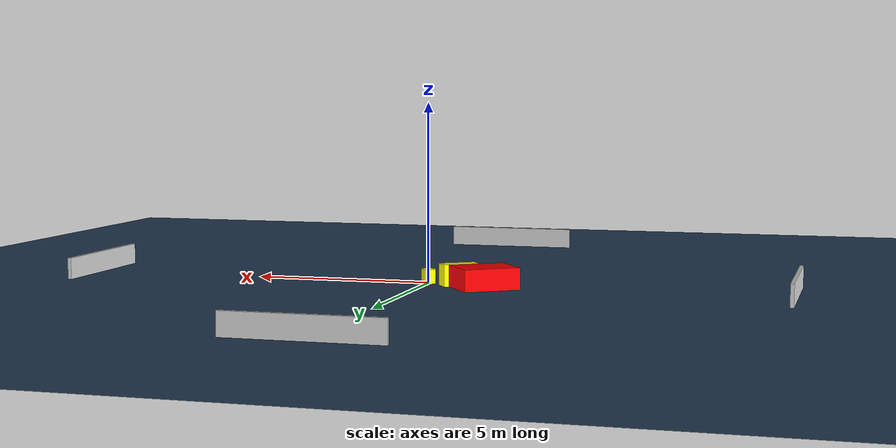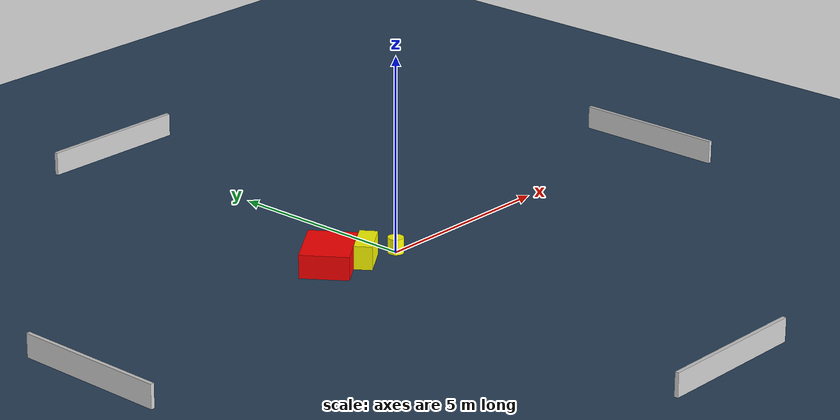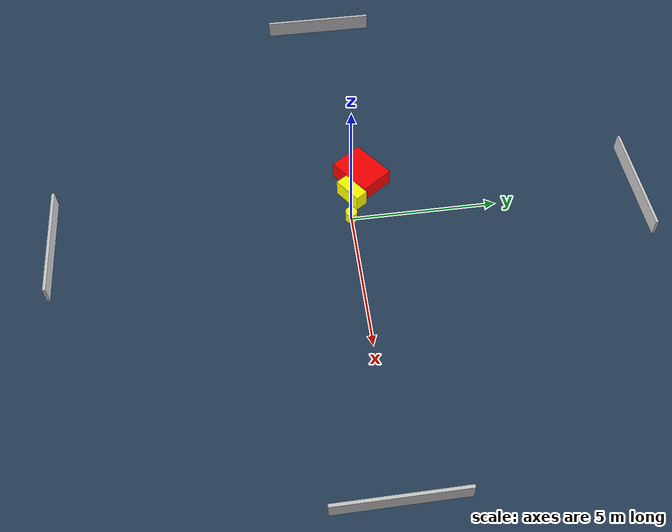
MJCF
<?xml version="1.0" ?>
<mujoco model="generated_environment">
  <option timestep="0.01" integrator="RK4" cone="elliptic"/>
  <default>
    <geom density="1"/>
  </default>
  <asset>
    <texture builtin="gradient" height="3072" name="skybox" rgb1="0.3 0.5 0.7" rgb2="0 0 0" type="skybox" width="512"/>
    <texture builtin="checker" height="300" name="groundplane" rgb1="0.2 0.3 0.4" rgb2="0.1 0.2 0.3" type="2d" width="300"/>
    <material name="groundplane" reflectance="0.2" texrepeat="5 5" texture="groundplane"/>
  </asset>
  <worldbody>
    <light dir="0 0 -1" directional="true" pos="0 0 1.5"/>
    <geom condim="3" friction="0.5 0.005 0.001" material="groundplane" name="floor" pos="0 0 0" size="0 0 0.05" type="plane"/>
    <body name="walls">
      <geom name="wall_1" condim="4" pos="-10.0 0.0 0.3" rgba="0.800000011920929 0.800000011920929 0.800000011920929 1.0" size="0.05 2.0 0.3" type="box"/>
      <geom name="wall_2" condim="4" pos="10.0 0.0 0.3" rgba="0.800000011920929 0.800000011920929 0.800000011920929 1.0" size="0.05 2.0 0.3" type="box"/>
      <geom name="wall_3" condim="4" pos="0.0 -10.0 0.3" rgba="0.800000011920929 0.800000011920929 0.800000011920929 1.0" size="2.0 0.05 0.3" type="box"/>
      <geom name="wall_4" condim="4" pos="0.0 10.0 0.3" rgba="0.800000011920929 0.800000011920929 0.800000011920929 1.0" size="2.0 0.05 0.3" type="box"/>
    </body>
    <body name="robot">
      <joint name="joint_x" type="slide" pos="0 0 0" axis="1 0 0"/>
      <joint name="joint_y" type="slide" pos="0 0 0" axis="0 1 0"/>
      <geom name="robot" type="cylinder" pos="0.0 0.0 0.2" size="0.2 0.2 0.0" mass="5.0" friction="1.0 0.005 0.0001" condim="4" rgba="1.0 1.0 0.0 1.0"/>
    </body>
    <body name="obstacle_1_movable">
      <geom name="obstacle_1_movable" condim="4" pos="-0.9160476117307119 0.13749601533885 0.3" euler="0 0 214.78077652074734" friction="0.0 0.005 0.001" rgba="1.0 1.0 0.0 1.0" size="0.5132833767857798 0.22622449878365924 0.3" type="box" mass="0.1"/>
      <joint type="free"/>
    </body>
    <body name="obstacle_2_static">
      <geom name="obstacle_2_static" condim="4" pos="-1.7454720070655807 0.5875849897642542 0.3" euler="0 0 35.42384208380909" friction="0.0 0.005 0.001" rgba="1.0 0.0 0.0 1.0" size="0.7940375099504962 0.6107160966815096 0.3" type="box"/>
    </body>
  </worldbody>
  <actuator>
    <motor name="actuator_x" joint="joint_x" gear="1" ctrlrange="-1 1"/>
    <motor name="actuator_y" joint="joint_y" gear="1" ctrlrange="-1 1"/>
  </actuator>
</mujoco>
